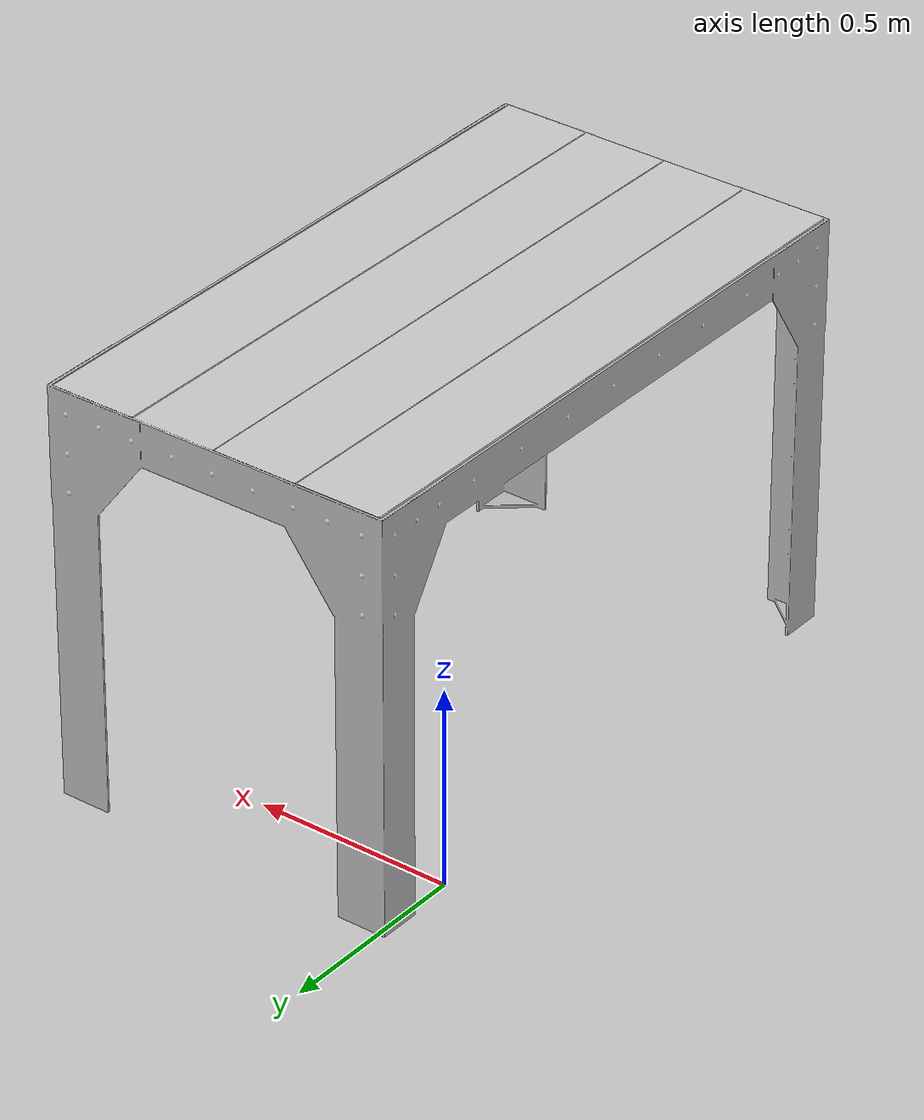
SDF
<?xml version='1.0'?>
<sdf version='1.6'>
  <model name='kit_tray_table'>
    <allow_auto_disable>true</allow_auto_disable>
    <static>true</static>
    <link name="link">
      <inertial>
        <pose>0 0 0.0004 0 0 0</pose>
        <mass>0.5</mass>
        <inertia>
          <ixx>0.0009</ixx>
          <ixy>0</ixy>
          <ixz>0</ixz>
          <iyy>0.0009</iyy>
          <iyz>0</iyz>
          <izz>0.0009</izz>
        </inertia>
      </inertial>
      <gravity>true</gravity>
      <pose>0 0 0 0 0 0</pose>
      <visual name="visual">
        <geometry>
          <mesh>
            <scale>1.2 1 1.3</scale>
            <uri>model://kit_tray_table_ariac/meshes/tray_table.dae</uri>
          </mesh>
        </geometry>
      </visual>
      <collision name='collision'>
        <pose frame=''>0 0 0 0 0 0</pose>
        <geometry>
          <mesh>
            <uri>model://kit_tray_table_ariac/meshes/tray_table.dae</uri>
            <scale>1.2 1 1.3</scale>
          </mesh>
        </geometry>
        <surface>
          <contact>
            <ode>
              <max_vel>0.1</max_vel>
              <min_depth>0.001</min_depth>
            </ode>
          </contact>
        </surface>
      </collision>
    </link>
  </model>
</sdf>
